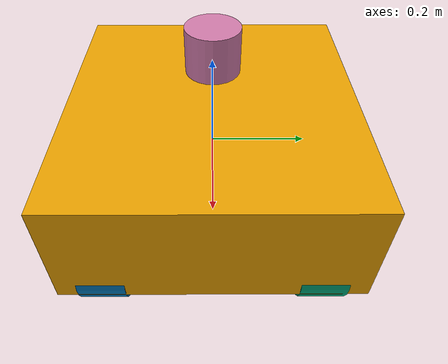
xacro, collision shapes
<?xml version="1.0"?>

<robot xmlns:xacro="http://ros.org/wiki/xacro" name="scout">
    <xacro:property name="M_PI" value="3.1415926535897931" />
    <xacro:arg name="load_chassis" default="true"/>
    <xacro:arg name="load_lidar" default="true"/>
    <xacro:arg name="load_imu" default="true"/>

    <!-- select_lidar: radar or rs_lidar16 -->
    <xacro:arg name="select_lidar" default="rs_lidar16"/>
    <xacro:arg name="load_odom_sim" default="true"/>
    <xacro:arg name="use_sim" default="false"/>
    <xacro:arg name="ns" default="/"/>
    <xacro:arg name="gpu" default="true"/>
    <xacro:property name="gpu" value="$(arg gpu)" />

    <xacro:if value="$(arg load_chassis)">
        <xacro:include filename="$(find sct_description)/urdf/scout/chassis.urdf.xacro"/>
        <xacro:chassis use_sim="$(arg use_sim)"/>
    </xacro:if>

    <xacro:if value="$(arg load_lidar)">
        <xacro:include filename="$(find sct_description)/urdf/common/os1_64.urdf.xacro"/>
        <xacro:os1_64 connected_to="base_link" xyz="0.1349044 0.0 0.265" rpy="0.0 0.0 0.0"
                      use_sim="$(arg use_sim)" gpu="true"/>
    </xacro:if>

<!--                     xyz="0.0 0.0 0.35"-->

    <xacro:if value="$(arg use_sim)">

        <gazebo>
            <plugin name="gazebo_ros_control" filename="libgazebo_ros_control.so">
                <robotNamespace>$(arg ns)</robotNamespace>
            </plugin>
        </gazebo>

    </xacro:if>

</robot>

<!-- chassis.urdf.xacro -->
<robot xmlns:xacro="http://www.ros.org/wiki/xacro">

    <xacro:include filename="$(find sct_description)/urdf/common/sct_mini_wheel.urdf.xacro"/>

    <!-- https://upload.wikimedia.org/wikipedia/commons/5/52/Wheelbase_and_Track.png -->
    <xacro:property name="base_x_size" value="0.6200000"/>
    <xacro:property name="base_y_size" value="0.585000"/>
    <xacro:property name="base_z_size" value="0.235000"/>

    <xacro:property name="wheel_radius" value="0.08"/>

    <xacro:property name="wheel_track" value="0.416503"/>
    <xacro:property name="wheel_base" value="0.463951"/>
    <xacro:property name="wheel_offset_z" value="-0.100998"/>

    <xacro:macro name="chassis" params="use_sim:=false">
        <link name="base_link">
            <visual>
                <origin xyz="0 0 0" rpy="1.5707 0 -1.5707"/>
                <geometry>
                    <mesh filename="package://sct_description/meshes/scout/base_link.dae"/>
                </geometry>
            </visual>
            <visual>
                <origin xyz="0 0 0.15" rpy="0.0 0.0 0.0"/>
                <geometry>
                    <mesh filename="package://sct_description/meshes/scout/upper_shell.stl" scale="0.001 0.001 0.001"/>
                </geometry>
            </visual>
            <collision>
                <origin xyz="0 0 0" rpy="0 0 0"/>
                <geometry>
                    <box size="${base_x_size} ${base_y_size} ${base_z_size}"/>
                </geometry>
            </collision>
        </link>

        <link name="inertial_link">
            <inertial>
                <mass value="50"/>
                <origin xyz="0.0 0.0 0.0"/>
                <inertia ixx="2.288641" ixy="0" ixz="0" iyy="5.103976" iyz="0" izz="3.431465"/>
            </inertial>
        </link>

        <joint name="inertial_joint" type="fixed">
            <origin xyz="0 0 0" rpy="0 0 0"/>
            <parent link="base_link"/>
            <child link="inertial_link"/>
        </joint>

        <xacro:sct_mini_wheel prefix="left_front" connected_to="base_link"
                     wheel_x_offset="${wheel_base/2}" wheel_y_offset="${wheel_track/2}"
                     wheel_z_offset="${wheel_offset_z}" rotation_degree="${-pi/2}" rotation_ori="${1}"/>
        <xacro:sct_mini_wheel prefix="left_rear" connected_to="base_link"
                              wheel_x_offset="${-wheel_base/2}" wheel_y_offset="${wheel_track/2}"
                              wheel_z_offset="${wheel_offset_z}" rotation_degree="${-pi/2}" rotation_ori="${1}"/>

        <xacro:sct_mini_wheel prefix="right_front" connected_to="base_link"
                     wheel_x_offset="${wheel_base/2}" wheel_y_offset="${-wheel_track/2}"
                     wheel_z_offset="${wheel_offset_z}" rotation_degree="${pi/2}" rotation_ori="${-1}"/>
        <xacro:sct_mini_wheel prefix="right_rear" connected_to="base_link"
                     wheel_x_offset="${-wheel_base/2}" wheel_y_offset="${-wheel_track/2}"
                     wheel_z_offset="${wheel_offset_z}" rotation_degree="${pi/2}" rotation_ori="${-1}"/>

        <!-- those wheel transmission useless when don't use ros-control   -->
        <xacro:wheel_transmission prefix="left_front" mechanical_reduction="1"/>
        <xacro:wheel_transmission prefix="right_front" mechanical_reduction="1"/>
        <xacro:wheel_transmission prefix="left_rear" mechanical_reduction="1"/>
        <xacro:wheel_transmission prefix="right_rear" mechanical_reduction="1"/>

    </xacro:macro>

</robot>

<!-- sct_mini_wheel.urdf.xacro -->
<robot xmlns:xacro="http://ros.org/wiki/xacro" name="scout_wheel">

    <xacro:macro name="sct_mini_wheel"
                 params="prefix connected_to wheel_x_offset wheel_y_offset wheel_z_offset rotation_degree rotation_ori">
        <!--  link  -->
        <link name="${prefix}_wheel">
            <visual>
                <origin xyz="0 0 0" rpy="0 0 0"/>
                <geometry>
                    <mesh filename="package://sct_description/meshes/common/wheel.dae"/>
                </geometry>
            </visual>
            <inertial>
                <mass value="8"/>
                <origin xyz="0 0 0"/>
                <inertia ixx="0.1171" ixy="0" ixz="0" iyy="0.1361" iyz="0" izz="0.1171"/>
            </inertial>
            <collision>
                <origin xyz="0 0 0" rpy="0 0 0"/>
                <geometry>
                    <cylinder radius="0.08" length="0.09"/>
                </geometry>
            </collision>
        </link>

        <!--  joint  -->
        <joint name="${prefix}_wheel_joint" type="continuous">
            <axis xyz="0 0 ${rotation_ori}"/>
            <origin xyz="${wheel_x_offset} ${wheel_y_offset} ${wheel_offset_z}" rpy="${rotation_degree} 0 0"/>
            <dynamics damping="0.0" friction="0.01"/>
            <parent link="${connected_to}"/>
            <child link="${prefix}_wheel"/>
        </joint>

    </xacro:macro>

    <xacro:macro name="wheel_transmission" params="prefix mechanical_reduction">
        <transmission name="${prefix}_wheel_trans">
            <type>transmission_interface/SimpleTransmission</type>
            <actuator name="${prefix}_wheel_motor">
                <hardwareInterface>hardware_interface/VelocityJointInterface</hardwareInterface>
                <mechanicalReduction>${mechanical_reduction}</mechanicalReduction>
            </actuator>
            <joint name="${prefix}_wheel_joint">
                <hardwareInterface>hardware_interface/VelocityJointInterface</hardwareInterface>
            </joint>
        </transmission>
    </xacro:macro>

</robot>

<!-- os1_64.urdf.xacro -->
<!-- Modified from the work of Wil Selby (https://github.com/wilselby/ouster_example/blob/master/ouster_description/urdf/OS1-64.urdf.xacro) -->
<robot xmlns:xacro="http://ros.org/wiki/xacro" name="os1_64">
  <xacro:property name="PI" value="3.1415926535897931"/>

  <xacro:macro name="os1_64" params="xyz:='0 0 0' rpy:='0 0 0' connected_to:=base_link name:=ouster reduced:=true prefix:=ouster
                                     hz:=10 samples:=2048 min_range:=0.2 max_range:=1000 noise:=0.00001
                                     min_angle_v:=-16.6 max_angle_v:=16.6 gpu:=false use_sim:=false">

    <!-- Conditional properties -->
    <xacro:if value="${reduced}">
      <xacro:property name="file_visual" value="os1_64_reduced"/>
    </xacro:if>
    <xacro:unless value="${reduced}">
      <xacro:property name="file_visual" value="os1_64"/>
    </xacro:unless>

    <xacro:if value="${gpu}">
      <xacro:property name="gpu_str" value="gpu_"/>
    </xacro:if>
    <xacro:unless value="${gpu}">
      <xacro:property name="gpu_str" value=""/>
    </xacro:unless>

    <joint name="${name}_joint" type="fixed">
      <origin xyz="${xyz}" rpy="${rpy}"/>
      <parent link="${connected_to}"/>
      <child link="${name}_sensor_link"/>
    </joint>

    <link name="${name}_sensor_link">
      <inertial>
        <mass value="0.425"/>
        <origin xyz="0 0 0.03675" rpy="0 0 0" />
        <inertia ixx="0.000308429" ixy="0" ixz="0"
                 iyy="0.000308429" iyz="0" izz="0.00034589"/>
      </inertial>
      <collision name="lidar_collision">
        <origin xyz="0 0 0.03675" rpy="0 0 0" />
        <geometry>
          <cylinder radius="0.04350" length="0.07350"/>
        </geometry>
      </collision>
      <visual name="lidar_visual">
        <origin xyz="0 0 0" rpy="0 0 0"/>
        <geometry>
          <mesh filename="package://sct_description/meshes/common/ouster_lidar.stl" scale="0.001 0.001 0.001"/>
        </geometry>
      </visual>
    </link>

    <link name="${name}_lidar_link">
      <pose>0 0 0 0 0 ${PI}</pose>
    </link>
    <joint name="${name}_lidar_joint" type="fixed">
      <origin xyz="0.0 0.0 0.0" rpy="0.0 0.0 0.0"/>
      <parent link="${name}_sensor_link"/>
      <child link="${name}_lidar_link"/>
    </joint>

    <xacro:if value="${use_sim}">
      <gazebo reference="${name}_lidar_link">
        <sensor type="${gpu_str}ray" name="${name}_lidar_link">
          <pose>0 0 0 0 0 0</pose>
          <visualize>false</visualize>
          <update_rate>${hz}</update_rate>
          <ray>
            <scan>
              <vertical>
                <samples>64</samples>
                <resolution>1</resolution>
                <min_angle>${min_angle_v*PI/180.0}</min_angle>
                <max_angle>${max_angle_v*PI/180.0}</max_angle>
              </vertical>
              <horizontal>
                <samples>${samples}</samples>
                <resolution>1</resolution>
                <min_angle>-${PI}</min_angle>
                <max_angle>${PI}</max_angle>
              </horizontal>
            </scan>
            <range>
              <min>${min_range}</min>
              <max>${max_range}</max>
              <resolution>0.03</resolution>
            </range>
            <noise>
              <type>gaussian</type>
              <mean>0.0</mean>
              <stddev>0.000000000001</stddev>
            </noise>
          </ray>
          <plugin name="gazebo_ros_laser_controller" filename="libgazebo_ros_ouster_${gpu_str}laser.so">
            <topicName>${prefix}/points</topicName>
            <frameName>${name}_lidar_link</frameName>
            <min_range>${min_range}</min_range>
            <max_range>${max_range}</max_range>
            <gaussianNoise>${noise}</gaussianNoise>
          </plugin>
        </sensor>
      </gazebo>
    </xacro:if>

    <link name="${name}_imu_link"/>
    <joint name="${name}_imu_joint" type="fixed">
      <origin xyz="0.0 0.0 0.0" rpy="0.0 0.0 0.0"/>
      <parent link="${name}_sensor_link"/>
      <child link="${name}_imu_link"/>
    </joint>

    <xacro:if value="${use_sim}">
      <gazebo reference="${name}_imu_link">
        <gravity>true</gravity>
        <sensor type="imu" name="${name}_imu_sensor">
          <pose>0 0 0 0 0 0</pose>
          <always_on>true</always_on>
          <update_rate>100</update_rate>
          <visualize>true</visualize>
          <topic>${prefix}/imu</topic>

          <plugin filename="libgazebo_ros_imu_sensor.so" name="imu_plugin">
            <topicName>${prefix}/imu</topicName>
            <bodyName>${name}_imu_link</bodyName>
            <updateRateHZ>100.0</updateRateHZ>
            <gaussianNoise>0.001</gaussianNoise>
            <xyzOffset>0 0 0</xyzOffset>
            <rpyOffset>0 0 0</rpyOffset>
            <frameName>${name}_imu_link</frameName>
          </plugin>
        </sensor>
      </gazebo>
    </xacro:if>

  </xacro:macro>
</robot>
